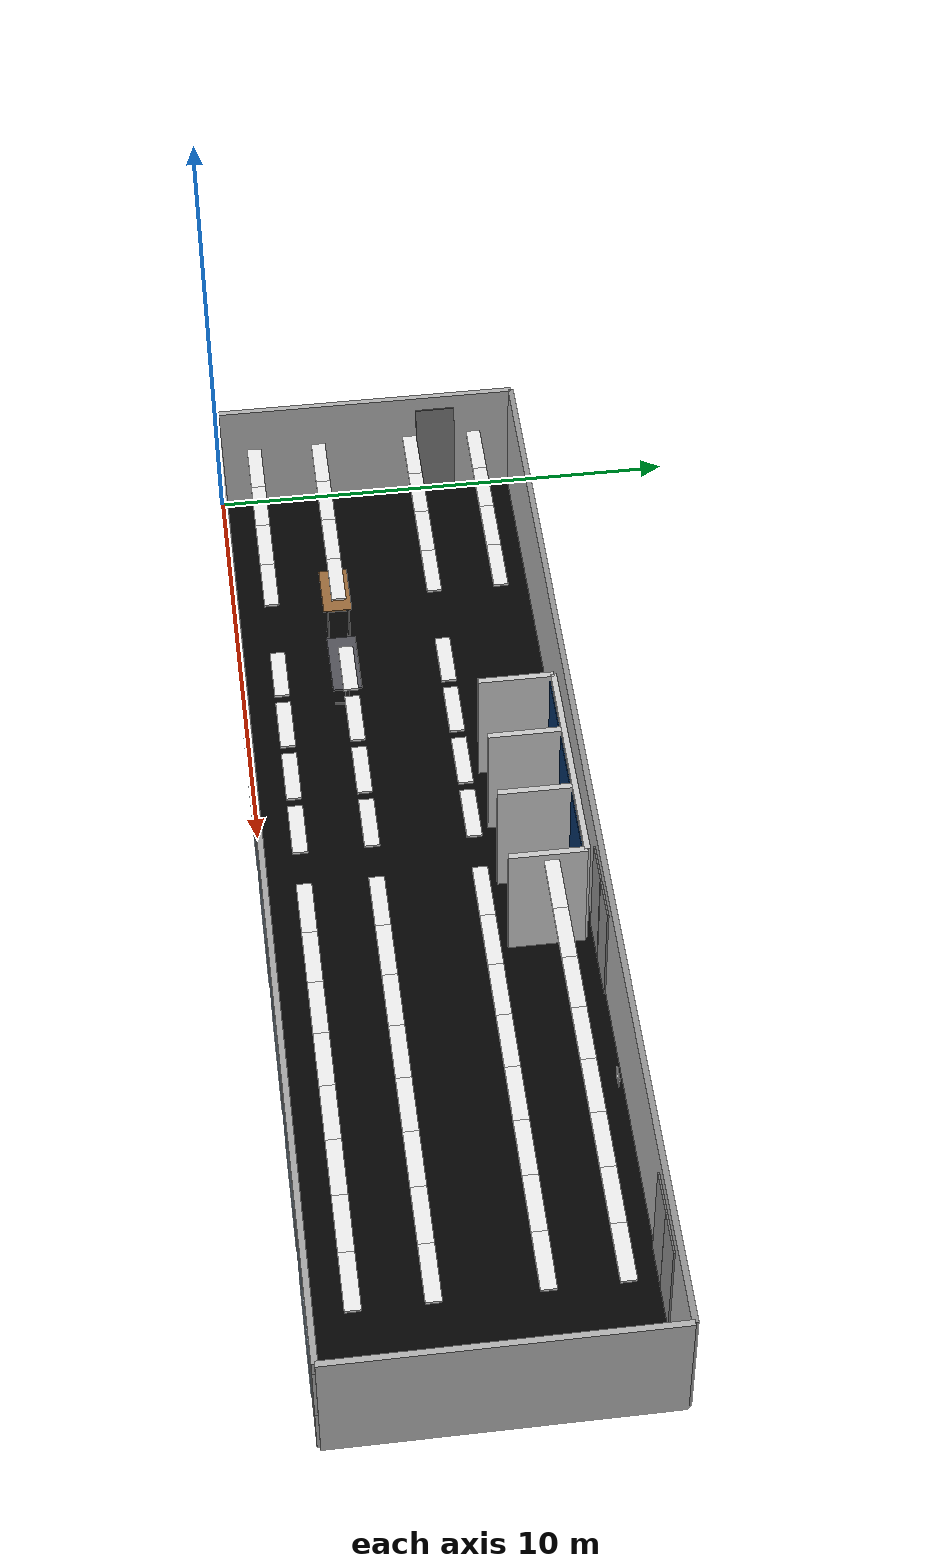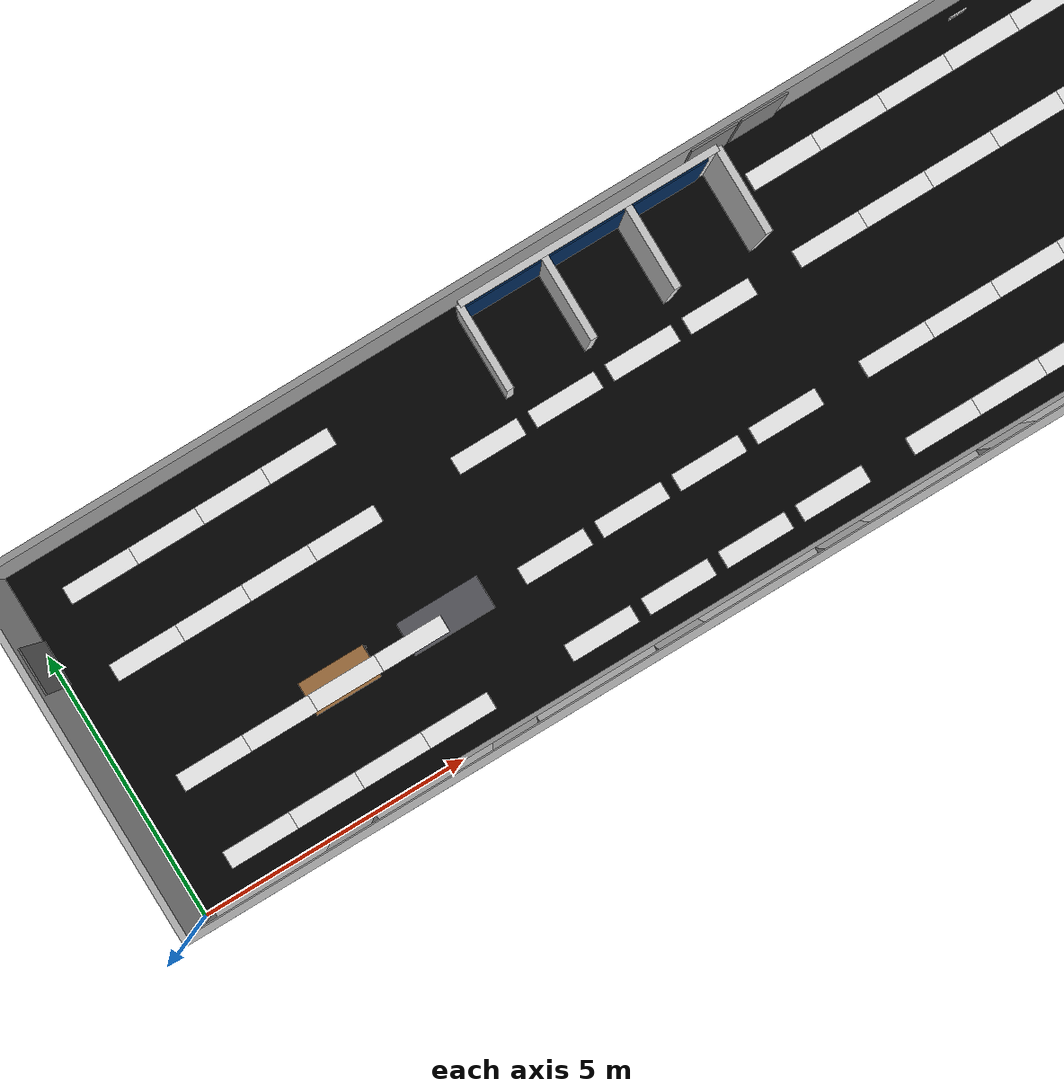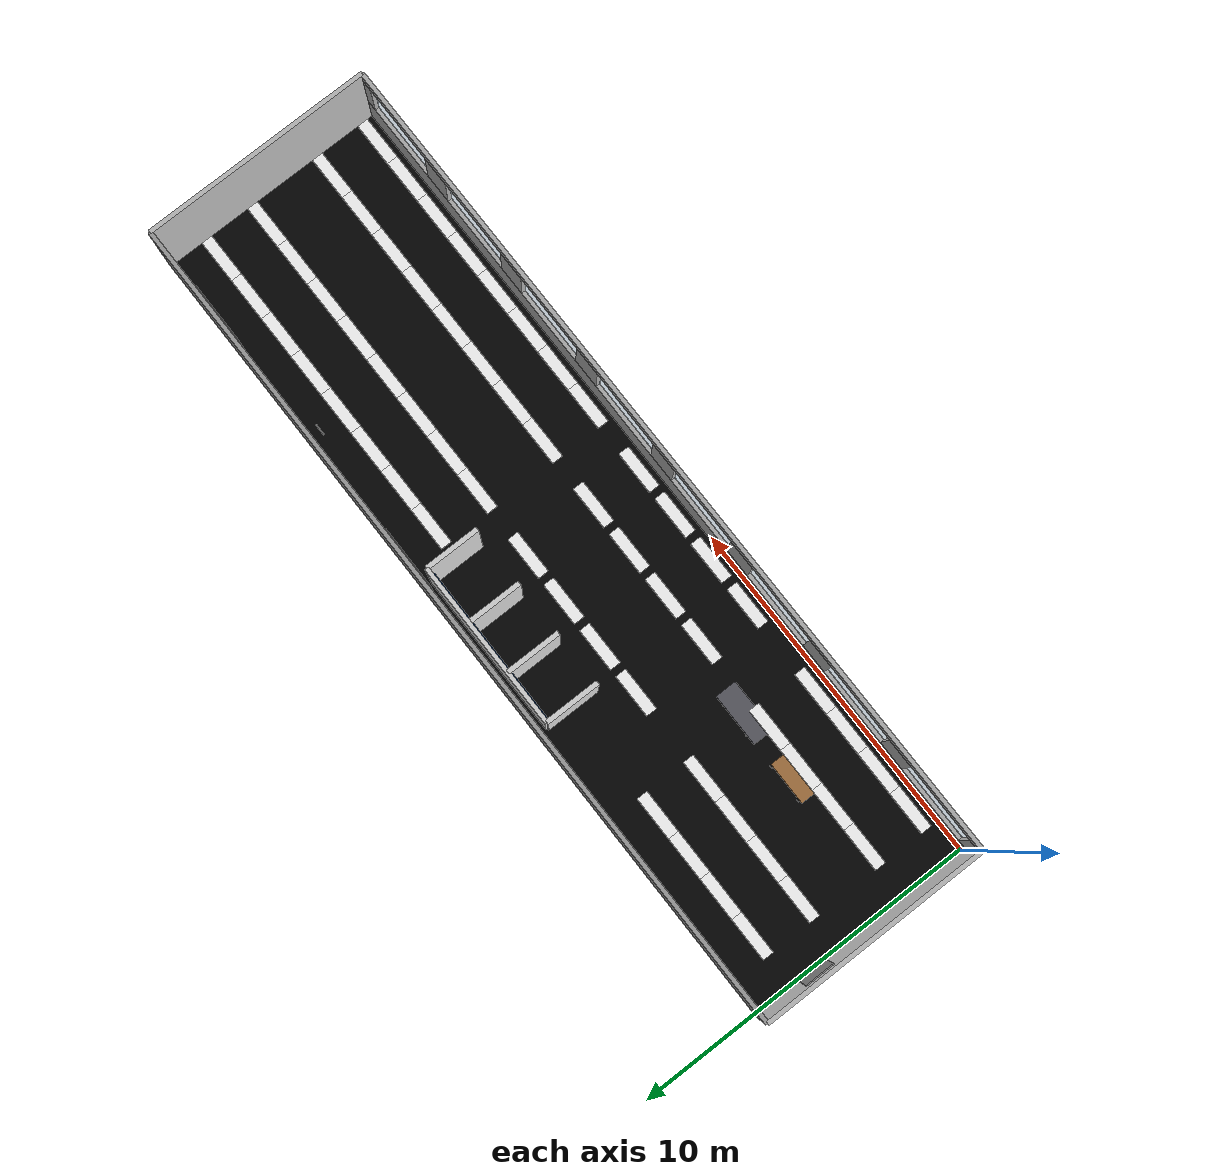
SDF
<?xml version='1.0' encoding='utf-8'?>
<sdf version="1.10">
  <world name="room_427_integrated">
    <plugin filename="gz-sim-physics-system" name="gz::sim::systems::Physics" />
    <plugin filename="gz-sim-user-commands-system" name="gz::sim::systems::UserCommands" />
    <plugin filename="gz-sim-scene-broadcaster-system" name="gz::sim::systems::SceneBroadcaster" />
    <gravity>0 0 -9.8</gravity>
    <scene>
      <ambient>0.45 0.45 0.45 1</ambient>
      <background>0.75 0.78 0.82 1</background>
      <shadows>true</shadows>
      <grid>false</grid>
    </scene>
    <light name="main_light" type="directional">
      <pose>0 0 10 0 0 0</pose>
      <diffuse>0.6 0.6 0.6 1</diffuse>
      <specular>0.4 0.4 0.4 1</specular>
      <direction>-0.5 0.5 -1</direction>
    </light>
    <gui fullscreen="0">
      <camera name="user_camera">
        <pose>12 -10 8 0.7 0 1.15</pose>
      </camera>
    </gui>
    <include>
      <name>room_427_shell</name>
      <uri>model://room_427_shell</uri>
      <pose>0 0 0 0 0 0</pose>
    </include>
    <include>
      <name>light_z1_r1_c1</name>
      <uri>model://fluorescent_light</uri>
      <pose>1.80 0.75 2.70 0 0 0</pose>
    </include>
    <include>
      <name>light_z1_r1_c2</name>
      <uri>model://fluorescent_light</uri>
      <pose>1.80 2.15 2.70 0 0 0</pose>
    </include>
    <include>
      <name>light_z1_r1_c3</name>
      <uri>model://fluorescent_light</uri>
      <pose>1.80 4.15 2.70 0 0 0</pose>
    </include>
    <include>
      <name>light_z1_r1_c4</name>
      <uri>model://fluorescent_light</uri>
      <pose>1.80 5.55 2.70 0 0 0</pose>
    </include>
    <include>
      <name>light_z1_r2_c1</name>
      <uri>model://fluorescent_light</uri>
      <pose>3.00 0.75 2.70 0 0 0</pose>
    </include>
    <include>
      <name>light_z1_r2_c2</name>
      <uri>model://fluorescent_light</uri>
      <pose>3.00 2.15 2.70 0 0 0</pose>
    </include>
    <include>
      <name>light_z1_r2_c3</name>
      <uri>model://fluorescent_light</uri>
      <pose>3.00 4.15 2.70 0 0 0</pose>
    </include>
    <include>
      <name>light_z1_r2_c4</name>
      <uri>model://fluorescent_light</uri>
      <pose>3.00 5.55 2.70 0 0 0</pose>
    </include>
    <include>
      <name>light_z1_r3_c1</name>
      <uri>model://fluorescent_light</uri>
      <pose>4.20 0.75 2.70 0 0 0</pose>
    </include>
    <include>
      <name>light_z1_r3_c2</name>
      <uri>model://fluorescent_light</uri>
      <pose>4.20 2.15 2.70 0 0 0</pose>
    </include>
    <include>
      <name>light_z1_r3_c3</name>
      <uri>model://fluorescent_light</uri>
      <pose>4.20 4.15 2.70 0 0 0</pose>
    </include>
    <include>
      <name>light_z1_r3_c4</name>
      <uri>model://fluorescent_light</uri>
      <pose>4.20 5.55 2.70 0 0 0</pose>
    </include>
    <include>
      <name>light_z1_r4_c1</name>
      <uri>model://fluorescent_light</uri>
      <pose>5.40 0.75 2.70 0 0 0</pose>
    </include>
    <include>
      <name>light_z1_r4_c2</name>
      <uri>model://fluorescent_light</uri>
      <pose>5.40 2.15 2.70 0 0 0</pose>
    </include>
    <include>
      <name>light_z1_r4_c3</name>
      <uri>model://fluorescent_light</uri>
      <pose>5.40 4.15 2.70 0 0 0</pose>
    </include>
    <include>
      <name>light_z1_r4_c4</name>
      <uri>model://fluorescent_light</uri>
      <pose>5.40 5.55 2.70 0 0 0</pose>
    </include>
    <include>
      <name>light_z2_r1_c1</name>
      <uri>model://fluorescent_light</uri>
      <pose>8.00 0.75 2.70 0 0 0</pose>
    </include>
    <include>
      <name>light_z2_r1_c2</name>
      <uri>model://fluorescent_light</uri>
      <pose>8.00 2.15 2.70 0 0 0</pose>
    </include>
    <include>
      <name>light_z2_r1_c3</name>
      <uri>model://fluorescent_light</uri>
      <pose>8.00 4.15 2.70 0 0 0</pose>
    </include>
    <include>
      <name>light_z2_r2_c1</name>
      <uri>model://fluorescent_light</uri>
      <pose>9.40 0.75 2.70 0 0 0</pose>
    </include>
    <include>
      <name>light_z2_r2_c2</name>
      <uri>model://fluorescent_light</uri>
      <pose>9.40 2.15 2.70 0 0 0</pose>
    </include>
    <include>
      <name>light_z2_r2_c3</name>
      <uri>model://fluorescent_light</uri>
      <pose>9.40 4.15 2.70 0 0 0</pose>
    </include>
    <include>
      <name>light_z2_r3_c1</name>
      <uri>model://fluorescent_light</uri>
      <pose>10.80 0.75 2.70 0 0 0</pose>
    </include>
    <include>
      <name>light_z2_r3_c2</name>
      <uri>model://fluorescent_light</uri>
      <pose>10.80 2.15 2.70 0 0 0</pose>
    </include>
    <include>
      <name>light_z2_r3_c3</name>
      <uri>model://fluorescent_light</uri>
      <pose>10.80 4.15 2.70 0 0 0</pose>
    </include>
    <include>
      <name>light_z2_r4_c1</name>
      <uri>model://fluorescent_light</uri>
      <pose>12.20 0.75 2.70 0 0 0</pose>
    </include>
    <include>
      <name>light_z2_r4_c2</name>
      <uri>model://fluorescent_light</uri>
      <pose>12.20 2.15 2.70 0 0 0</pose>
    </include>
    <include>
      <name>light_z2_r4_c3</name>
      <uri>model://fluorescent_light</uri>
      <pose>12.20 4.15 2.70 0 0 0</pose>
    </include>
    <include>
      <name>light_z3_r1_c1</name>
      <uri>model://fluorescent_light</uri>
      <pose>14.20 0.75 2.70 0 0 0</pose>
    </include>
    <include>
      <name>light_z3_r1_c2</name>
      <uri>model://fluorescent_light</uri>
      <pose>14.20 2.15 2.70 0 0 0</pose>
    </include>
    <include>
      <name>light_z3_r1_c3</name>
      <uri>model://fluorescent_light</uri>
      <pose>14.20 4.15 2.70 0 0 0</pose>
    </include>
    <include>
      <name>light_z3_r1_c4</name>
      <uri>model://fluorescent_light</uri>
      <pose>14.20 5.55 2.70 0 0 0</pose>
    </include>
    <include>
      <name>light_z3_r2_c1</name>
      <uri>model://fluorescent_light</uri>
      <pose>15.40 0.75 2.70 0 0 0</pose>
    </include>
    <include>
      <name>light_z3_r2_c2</name>
      <uri>model://fluorescent_light</uri>
      <pose>15.40 2.15 2.70 0 0 0</pose>
    </include>
    <include>
      <name>light_z3_r2_c3</name>
      <uri>model://fluorescent_light</uri>
      <pose>15.40 4.15 2.70 0 0 0</pose>
    </include>
    <include>
      <name>light_z3_r2_c4</name>
      <uri>model://fluorescent_light</uri>
      <pose>15.40 5.55 2.70 0 0 0</pose>
    </include>
    <include>
      <name>light_z3_r3_c1</name>
      <uri>model://fluorescent_light</uri>
      <pose>16.60 0.75 2.70 0 0 0</pose>
    </include>
    <include>
      <name>light_z3_r3_c2</name>
      <uri>model://fluorescent_light</uri>
      <pose>16.60 2.15 2.70 0 0 0</pose>
    </include>
    <include>
      <name>light_z3_r3_c3</name>
      <uri>model://fluorescent_light</uri>
      <pose>16.60 4.15 2.70 0 0 0</pose>
    </include>
    <include>
      <name>light_z3_r3_c4</name>
      <uri>model://fluorescent_light</uri>
      <pose>16.60 5.55 2.70 0 0 0</pose>
    </include>
    <include>
      <name>light_z3_r4_c1</name>
      <uri>model://fluorescent_light</uri>
      <pose>17.80 0.75 2.70 0 0 0</pose>
    </include>
    <include>
      <name>light_z3_r4_c2</name>
      <uri>model://fluorescent_light</uri>
      <pose>17.80 2.15 2.70 0 0 0</pose>
    </include>
    <include>
      <name>light_z3_r4_c3</name>
      <uri>model://fluorescent_light</uri>
      <pose>17.80 4.15 2.70 0 0 0</pose>
    </include>
    <include>
      <name>light_z3_r4_c4</name>
      <uri>model://fluorescent_light</uri>
      <pose>17.80 5.55 2.70 0 0 0</pose>
    </include>
    <include>
      <name>light_z3_r5_c1</name>
      <uri>model://fluorescent_light</uri>
      <pose>19.00 0.75 2.70 0 0 0</pose>
    </include>
    <include>
      <name>light_z3_r5_c2</name>
      <uri>model://fluorescent_light</uri>
      <pose>19.00 2.15 2.70 0 0 0</pose>
    </include>
    <include>
      <name>light_z3_r5_c3</name>
      <uri>model://fluorescent_light</uri>
      <pose>19.00 4.15 2.70 0 0 0</pose>
    </include>
    <include>
      <name>light_z3_r5_c4</name>
      <uri>model://fluorescent_light</uri>
      <pose>19.00 5.55 2.70 0 0 0</pose>
    </include>
    <include>
      <name>light_z3_r6_c1</name>
      <uri>model://fluorescent_light</uri>
      <pose>20.20 0.75 2.70 0 0 0</pose>
    </include>
    <include>
      <name>light_z3_r6_c2</name>
      <uri>model://fluorescent_light</uri>
      <pose>20.20 2.15 2.70 0 0 0</pose>
    </include>
    <include>
      <name>light_z3_r6_c3</name>
      <uri>model://fluorescent_light</uri>
      <pose>20.20 4.15 2.70 0 0 0</pose>
    </include>
    <include>
      <name>light_z3_r6_c4</name>
      <uri>model://fluorescent_light</uri>
      <pose>20.20 5.55 2.70 0 0 0</pose>
    </include>
    <include>
      <name>light_z3_r7_c1</name>
      <uri>model://fluorescent_light</uri>
      <pose>21.40 0.75 2.70 0 0 0</pose>
    </include>
    <include>
      <name>light_z3_r7_c2</name>
      <uri>model://fluorescent_light</uri>
      <pose>21.40 2.15 2.70 0 0 0</pose>
    </include>
    <include>
      <name>light_z3_r7_c3</name>
      <uri>model://fluorescent_light</uri>
      <pose>21.40 4.15 2.70 0 0 0</pose>
    </include>
    <include>
      <name>light_z3_r7_c4</name>
      <uri>model://fluorescent_light</uri>
      <pose>21.40 5.55 2.70 0 0 0</pose>
    </include>
    <include>
      <name>light_z3_r8_c1</name>
      <uri>model://fluorescent_light</uri>
      <pose>22.60 0.75 2.70 0 0 0</pose>
    </include>
    <include>
      <name>light_z3_r8_c2</name>
      <uri>model://fluorescent_light</uri>
      <pose>22.60 2.15 2.70 0 0 0</pose>
    </include>
    <include>
      <name>light_z3_r8_c3</name>
      <uri>model://fluorescent_light</uri>
      <pose>22.60 4.15 2.70 0 0 0</pose>
    </include>
    <include>
      <name>light_z3_r8_c4</name>
      <uri>model://fluorescent_light</uri>
      <pose>22.60 5.55 2.70 0 0 0</pose>
    </include>
    <include>
      <name>door_model_1_left</name>
      <uri>model://door</uri>
      <pose>21.2700 6.4700 0 0 0 0.0000</pose>
    </include>
    <include>
      <name>door_model_1_right</name>
      <uri>model://door</uri>
      <pose>22.1300 6.4700 0 0 0 0.0000</pose>
    </include>
    <include>
      <name>door_model_2_left</name>
      <uri>model://door</uri>
      <pose>13.5425 6.4700 0 0 0 0.0000</pose>
    </include>
    <include>
      <name>door_model_2_right</name>
      <uri>model://door</uri>
      <pose>14.4575 6.4700 0 0 0 0.0000</pose>
    </include>
    <include>
      <name>door_model_3</name>
      <uri>model://door</uri>
      <pose>0.0650 4.8382 0 0 0 1.5708</pose>
    </include>
    <include>
      <name>table_model_1</name>
      <uri>model://my_table</uri>
      <pose>4.0 2.2 0 0 0 0</pose>
    </include>
    <include>
      <name>table_model_2</name>
      <uri>model://my_table2</uri>
      <pose>6.0 2.2 0 0 0 0</pose>
    </include>
    <include>
      <name>aruco_tag_1</name>
      <uri>model://aruco_tag_whiteboard</uri>
      <pose>18.0 6.20 1.5 0 0 3.1416</pose>
    </include>
  </world>
</sdf>

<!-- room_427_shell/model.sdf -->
<sdf version="1.10">
  <model name="room_427_shell">
    <static>true</static>
    <model name="room_427_floor">
      <static>true</static>
      <pose>12.1 3.27 0 0 0 0</pose>
      <link name="floor_link">
        <collision name="floor_collision">
          <geometry>
            <box>
              <size>24.2 6.54 0.03</size>
            </box>
          </geometry>
        </collision>
        <visual name="floor_visual">
          <geometry>
            <box>
              <size>24.2 6.54 0.03</size>
            </box>
          </geometry>
          <material>
            <ambient>0.01 0.01 0.01 1</ambient>
            <diffuse>0.02 0.02 0.02 1</diffuse>
            <specular>0.8 0.8 0.8 1</specular>
            <pbr>
              <metal>
                <metalness>0.0</metalness>
                <roughness>0.18</roughness>
              </metal>
            </pbr>
          </material>
        </visual>
      </link>
    </model>
    <model name="back_wall_D_C">
      <static>true</static>
      <pose>12.1 6.54 1.375 0 0 0</pose>
      <link name="link">
        <collision name="collision">
          <geometry>
            <box>
              <size>24.2 0.12 2.75</size>
            </box>
          </geometry>
        </collision>
        <visual name="visual">
          <geometry>
            <box>
              <size>24.2 0.12 2.75</size>
            </box>
          </geometry>
          <material>
            <ambient>0.62 0.62 0.62 1</ambient>
            <diffuse>0.62 0.62 0.62 1</diffuse>
          </material>
        </visual>
      </link>
    </model>
    <model name="wall_A_C_solid_no_door">
      <static>true</static>
      <pose>24.2 3.27 1.375 0 0 0</pose>
      <link name="link">
        <collision name="collision">
          <geometry>
            <box>
              <size>0.12 6.54 2.75</size>
            </box>
          </geometry>
        </collision>
        <visual name="visual">
          <geometry>
            <box>
              <size>0.12 6.54 2.75</size>
            </box>
          </geometry>
          <material>
            <ambient>0.75 0.75 0.75 1</ambient>
            <diffuse>0.75 0.75 0.75 1</diffuse>
          </material>
        </visual>
      </link>
    </model>
    <model name="B_D_wall_solid_with_door3_panel">
      <static>true</static>
      <pose>0 3.27 1.375 0 0 0</pose>
      <link name="wall_B_D_solid">
        <collision name="collision">
          <geometry>
            <box>
              <size>0.12 6.54 2.75</size>
            </box>
          </geometry>
        </collision>
        <visual name="visual">
          <geometry>
            <box>
              <size>0.12 6.54 2.75</size>
            </box>
          </geometry>
          <material>
            <ambient>0.75 0.75 0.75 1</ambient>
            <diffuse>0.75 0.75 0.75 1</diffuse>
          </material>
        </visual>
      </link>
    </model>
    <model name="window_wall_lower_A_B">
      <static>true</static>
      <pose>12.1 0 0.545 0 0 0</pose>
      <link name="link">
        <collision name="collision">
          <geometry>
            <box>
              <size>24.2 0.12 1.09</size>
            </box>
          </geometry>
        </collision>
        <visual name="visual">
          <geometry>
            <box>
              <size>24.2 0.12 1.09</size>
            </box>
          </geometry>
          <material>
            <ambient>0.7 0.7 0.7 1</ambient>
            <diffuse>0.7 0.7 0.7 1</diffuse>
          </material>
        </visual>
      </link>
    </model>
    <model name="window_wall_top_A_B">
      <static>true</static>
      <pose>12.1 0 2.5925 0 0 0</pose>
      <link name="link">
        <collision name="collision">
          <geometry>
            <box>
              <size>24.2 0.12 0.305</size>
            </box>
          </geometry>
        </collision>
        <visual name="visual">
          <geometry>
            <box>
              <size>24.2 0.12 0.305</size>
            </box>
          </geometry>
          <material>
            <ambient>0.7 0.7 0.7 1</ambient>
            <diffuse>0.7 0.7 0.7 1</diffuse>
          </material>
        </visual>
      </link>
    </model>
    <model name="window_wall_vertical_pieces">
      <static>true</static>
      <link name="window_side_left">
        <pose>0.1725 0 1.765 0 0 0</pose>
        <collision name="collision">
          <geometry>
            <box>
              <size>0.345 0.12 1.35</size>
            </box>
          </geometry>
        </collision>
        <visual name="visual">
          <geometry>
            <box>
              <size>0.345 0.12 1.35</size>
            </box>
          </geometry>
          <material>
            <ambient>0.7 0.7 0.7 1</ambient>
            <diffuse>0.7 0.7 0.7 1</diffuse>
          </material>
        </visual>
      </link>
      <link name="window_gap_1">
        <pose>2.97 0 1.765 0 0 0</pose>
        <collision name="collision">
          <geometry>
            <box>
              <size>0.83 0.12 1.35</size>
            </box>
          </geometry>
        </collision>
        <visual name="visual">
          <geometry>
            <box>
              <size>0.83 0.12 1.35</size>
            </box>
          </geometry>
          <material>
            <ambient>0.7 0.7 0.7 1</ambient>
            <diffuse>0.7 0.7 0.7 1</diffuse>
          </material>
        </visual>
      </link>
      <link name="window_gap_2">
        <pose>6.01 0 1.765 0 0 0</pose>
        <collision name="collision">
          <geometry>
            <box>
              <size>0.83 0.12 1.35</size>
            </box>
          </geometry>
        </collision>
        <visual name="visual">
          <geometry>
            <box>
              <size>0.83 0.12 1.35</size>
            </box>
          </geometry>
          <material>
            <ambient>0.7 0.7 0.7 1</ambient>
            <diffuse>0.7 0.7 0.7 1</diffuse>
          </material>
        </visual>
      </link>
      <link name="window_gap_3">
        <pose>9.05 0 1.765 0 0 0</pose>
        <collision name="collision">
          <geometry>
            <box>
              <size>0.83 0.12 1.35</size>
            </box>
          </geometry>
        </collision>
        <visual name="visual">
          <geometry>
            <box>
              <size>0.83 0.12 1.35</size>
            </box>
          </geometry>
          <material>
            <ambient>0.7 0.7 0.7 1</ambient>
            <diffuse>0.7 0.7 0.7 1</diffuse>
          </material>
        </visual>
      </link>
      <link name="window_gap_4">
        <pose>12.09 0 1.765 0 0 0</pose>
        <collision name="collision">
          <geometry>
            <box>
              <size>0.83 0.12 1.35</size>
            </box>
          </geometry>
        </collision>
        <visual name="visual">
          <geometry>
            <box>
              <size>0.83 0.12 1.35</size>
            </box>
          </geometry>
          <material>
            <ambient>0.7 0.7 0.7 1</ambient>
            <diffuse>0.7 0.7 0.7 1</diffuse>
          </material>
        </visual>
      </link>
      <link name="window_gap_5">
        <pose>15.13 0 1.765 0 0 0</pose>
        <collision name="collision">
          <geometry>
            <box>
              <size>0.83 0.12 1.35</size>
            </box>
          </geometry>
        </collision>
        <visual name="visual">
          <geometry>
            <box>
              <size>0.83 0.12 1.35</size>
            </box>
          </geometry>
          <material>
            <ambient>0.7 0.7 0.7 1</ambient>
            <diffuse>0.7 0.7 0.7 1</diffuse>
          </material>
        </visual>
      </link>
      <link name="window_gap_6">
        <pose>18.17 0 1.765 0 0 0</pose>
        <collision name="collision">
          <geometry>
            <box>
              <size>0.83 0.12 1.35</size>
            </box>
          </geometry>
        </collision>
        <visual name="visual">
          <geometry>
            <box>
              <size>0.83 0.12 1.35</size>
            </box>
          </geometry>
          <material>
            <ambient>0.7 0.7 0.7 1</ambient>
            <diffuse>0.7 0.7 0.7 1</diffuse>
          </material>
        </visual>
      </link>
      <link name="window_gap_7">
        <pose>21.21 0 1.765 0 0 0</pose>
        <collision name="collision">
          <geometry>
            <box>
              <size>0.83 0.12 1.35</size>
            </box>
          </geometry>
        </collision>
        <visual name="visual">
          <geometry>
            <box>
              <size>0.83 0.12 1.35</size>
            </box>
          </geometry>
          <material>
            <ambient>0.7 0.7 0.7 1</ambient>
            <diffuse>0.7 0.7 0.7 1</diffuse>
          </material>
        </visual>
      </link>
      <link name="window_side_right">
        <pose>24.0175 0 1.765 0 0 0</pose>
        <collision name="collision">
          <geometry>
            <box>
              <size>0.365 0.12 1.35</size>
            </box>
          </geometry>
        </collision>
        <visual name="visual">
          <geometry>
            <box>
              <size>0.365 0.12 1.35</size>
            </box>
          </geometry>
          <material>
            <ambient>0.7 0.7 0.7 1</ambient>
            <diffuse>0.7 0.7 0.7 1</diffuse>
          </material>
        </visual>
      </link>
    </model>
    <model name="window_glass_panes">
      <static>true</static>
      <link name="window_1">
        <pose>1.45 -0.07 1.765 0 0 0</pose>
        <visual name="visual">
          <geometry>
            <box>
              <size>2.21 0.03 1.35</size>
            </box>
          </geometry>
          <material>
            <ambient>0.55 0.75 0.9 0.35</ambient>
            <diffuse>0.55 0.75 0.9 0.35</diffuse>
            <specular>0.8 0.8 0.8 1</specular>
          </material>
          <transparency>0.55</transparency>
        </visual>
      </link>
      <link name="window_2">
        <pose>4.49 -0.07 1.765 0 0 0</pose>
        <visual name="visual">
          <geometry>
            <box>
              <size>2.21 0.03 1.35</size>
            </box>
          </geometry>
          <material>
            <ambient>0.55 0.75 0.9 0.35</ambient>
            <diffuse>0.55 0.75 0.9 0.35</diffuse>
            <specular>0.8 0.8 0.8 1</specular>
          </material>
          <transparency>0.55</transparency>
        </visual>
      </link>
      <link name="window_3">
        <pose>7.53 -0.07 1.765 0 0 0</pose>
        <visual name="visual">
          <geometry>
            <box>
              <size>2.21 0.03 1.35</size>
            </box>
          </geometry>
          <material>
            <ambient>0.55 0.75 0.9 0.35</ambient>
            <diffuse>0.55 0.75 0.9 0.35</diffuse>
            <specular>0.8 0.8 0.8 1</specular>
          </material>
          <transparency>0.55</transparency>
        </visual>
      </link>
      <link name="window_4">
        <pose>10.57 -0.07 1.765 0 0 0</pose>
        <visual name="visual">
          <geometry>
            <box>
              <size>2.21 0.03 1.35</size>
            </box>
          </geometry>
          <material>
            <ambient>0.55 0.75 0.9 0.35</ambient>
            <diffuse>0.55 0.75 0.9 0.35</diffuse>
            <specular>0.8 0.8 0.8 1</specular>
          </material>
          <transparency>0.55</transparency>
        </visual>
      </link>
      <link name="window_5">
        <pose>13.61 -0.07 1.765 0 0 0</pose>
        <visual name="visual">
          <geometry>
            <box>
              <size>2.21 0.03 1.35</size>
            </box>
          </geometry>
          <material>
            <ambient>0.55 0.75 0.9 0.35</ambient>
            <diffuse>0.55 0.75 0.9 0.35</diffuse>
            <specular>0.8 0.8 0.8 1</specular>
          </material>
          <transparency>0.55</transparency>
        </visual>
      </link>
      <link name="window_6">
        <pose>16.65 -0.07 1.765 0 0 0</pose>
        <visual name="visual">
          <geometry>
            <box>
              <size>2.21 0.03 1.35</size>
            </box>
          </geometry>
          <material>
            <ambient>0.55 0.75 0.9 0.35</ambient>
            <diffuse>0.55 0.75 0.9 0.35</diffuse>
            <specular>0.8 0.8 0.8 1</specular>
          </material>
          <transparency>0.55</transparency>
        </visual>
      </link>
      <link name="window_7">
        <pose>19.69 -0.07 1.765 0 0 0</pose>
        <visual name="visual">
          <geometry>
            <box>
              <size>2.21 0.03 1.35</size>
            </box>
          </geometry>
          <material>
            <ambient>0.55 0.75 0.9 0.35</ambient>
            <diffuse>0.55 0.75 0.9 0.35</diffuse>
            <specular>0.8 0.8 0.8 1</specular>
          </material>
          <transparency>0.55</transparency>
        </visual>
      </link>
      <link name="window_8">
        <pose>22.73 -0.07 1.765 0 0 0</pose>
        <visual name="visual">
          <geometry>
            <box>
              <size>2.21 0.03 1.35</size>
            </box>
          </geometry>
          <material>
            <ambient>0.55 0.75 0.9 0.35</ambient>
            <diffuse>0.55 0.75 0.9 0.35</diffuse>
            <specular>0.8 0.8 0.8 1</specular>
          </material>
          <transparency>0.55</transparency>
        </visual>
      </link>
    </model>
    <model name="doors_and_connected_boxes_on_D_C_wall">
      <static>true</static>
      <link name="boxes_back_wall">
        <pose>11.1 6.27 1.375 0 0 0</pose>
        <collision name="collision">
          <geometry>
            <box>
              <size>4.699 0.12 2.75</size>
            </box>
          </geometry>
        </collision>
        <visual name="visual">
          <geometry>
            <box>
              <size>4.699 0.12 2.75</size>
            </box>
          </geometry>
          <material>
            <ambient>0.85 0.85 0.85 1</ambient>
            <diffuse>0.85 0.85 0.85 1</diffuse>
          </material>
        </visual>
      </link>
      <link name="boxes_left_side">
        <pose>8.75 5.50 1.375 0 0 0</pose>
        <collision name="collision">
          <geometry>
            <box>
              <size>0.127 1.549 2.75</size>
            </box>
          </geometry>
        </collision>
        <visual name="visual">
          <geometry>
            <box>
              <size>0.127 1.549 2.75</size>
            </box>
          </geometry>
          <material>
            <ambient>0.85 0.85 0.85 1</ambient>
            <diffuse>0.85 0.85 0.85 1</diffuse>
          </material>
        </visual>
      </link>
      <link name="boxes_divider_1">
        <pose>10.27 5.50 1.375 0 0 0</pose>
        <collision name="collision">
          <geometry>
            <box>
              <size>0.127 1.549 2.75</size>
            </box>
          </geometry>
        </collision>
        <visual name="visual">
          <geometry>
            <box>
              <size>0.127 1.549 2.75</size>
            </box>
          </geometry>
          <material>
            <ambient>0.85 0.85 0.85 1</ambient>
            <diffuse>0.85 0.85 0.85 1</diffuse>
          </material>
        </visual>
      </link>
      <link name="boxes_divider_2">
        <pose>11.79 5.50 1.375 0 0 0</pose>
        <collision name="collision">
          <geometry>
            <box>
              <size>0.127 1.549 2.75</size>
            </box>
          </geometry>
        </collision>
        <visual name="visual">
          <geometry>
            <box>
              <size>0.127 1.549 2.75</size>
            </box>
          </geometry>
          <material>
            <ambient>0.85 0.85 0.85 1</ambient>
            <diffuse>0.85 0.85 0.85 1</diffuse>
          </material>
        </visual>
      </link>
      <link name="boxes_right_side">
        <pose>13.45 5.50 1.375 0 0 0</pose>
        <collision name="collision">
          <geometry>
            <box>
              <size>0.127 1.549 2.75</size>
            </box>
          </geometry>
        </collision>
        <visual name="visual">
          <geometry>
            <box>
              <size>0.127 1.549 2.75</size>
            </box>
          </geometry>
          <material>
            <ambient>0.85 0.85 0.85 1</ambient>
            <diffuse>0.85 0.85 0.85 1</diffuse>
          </material>
        </visual>
      </link>
      <link name="box_1_blue_panel">
        <pose>9.51 6.20 1.35 0 0 0</pose>
        <visual name="visual">
          <geometry>
            <box>
              <size>1.397 0.03 2.50</size>
            </box>
          </geometry>
          <material>
            <ambient>0.0 0.16 0.35 1</ambient>
            <diffuse>0.0 0.16 0.35 1</diffuse>
          </material>
        </visual>
      </link>
      <link name="box_2_blue_panel">
        <pose>11.03 6.20 1.35 0 0 0</pose>
        <visual name="visual">
          <geometry>
            <box>
              <size>1.397 0.03 2.50</size>
            </box>
          </geometry>
          <material>
            <ambient>0.0 0.16 0.35 1</ambient>
            <diffuse>0.0 0.16 0.35 1</diffuse>
          </material>
        </visual>
      </link>
      <link name="box_3_blue_panel">
        <pose>12.55 6.20 1.35 0 0 0</pose>
        <visual name="visual">
          <geometry>
            <box>
              <size>1.397 0.03 2.50</size>
            </box>
          </geometry>
          <material>
            <ambient>0.0 0.16 0.35 1</ambient>
            <diffuse>0.0 0.16 0.35 1</diffuse>
          </material>
        </visual>
      </link>
    </model>
  </model>
</sdf>

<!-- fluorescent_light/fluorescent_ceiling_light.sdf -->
<sdf version="1.10">
  <model name="fluorescent_ceiling_light">
    <!-- This is a static fixture -->
    <static>true</static>

    <!-- Light housing / panel geometry -->
    <link name="panel_link">
      <pose>0 0 0 0 0 0</pose>

      <!-- Collision (simple box) -->
      <collision name="panel_collision">
        <geometry>
          <box>
            <!-- size: length x width x thickness -->
            <size>1.2 0.3 0.05</size>
          </box>
        </geometry>
      </collision>

      <!-- Visual (white, slightly emissive to look "lit") -->
      <visual name="panel_visual">
        <geometry>
          <box>
            <size>1.2 0.3 0.05</size>
          </box>
        </geometry>
        <material>
          <!-- Soft grey ambient -->
          <ambient>0.2 0.2 0.2 1</ambient>
          <!-- White diffuse -->
          <diffuse>1 1 1 1</diffuse>
                    <!-- Slightly emissive so it glows (RGBA, 0-1 range) -->
          <emissive>0.8 0.8 0.7 1</emissive>
          <!-- Mild specular highlight -->
          <specular>0.2 0.2 0.2 1</specular>
        </material>
        <!-- Slightly offset to show the lit face on the bottom -->
        <pose>0 0 -0.025 0 0 0</pose>
      </visual>
          <!-- Light source itself (spot light pointing downwards) -->
      <light name="panel_light" type="spot">
        <!-- Position the light just below the panel, pointing down (negative Z) -->
        <pose>0 0 -0.03 0 0 0</pose>

        <!-- Basic color/intensity -->
        <!-- diffuse = color of the light, specular = highlight color -->
        <diffuse>1.0 0.98 0.9 1</diffuse>   <!-- warm-ish white -->
        <specular>0.5 0.5 0.5 1</specular>

        <!-- Attenuation controls brightness falloff -->
        <attenuation>
          <range>10</range>       <!-- meters -->
          <constant>0.8</constant>
          <linear>0.2</linear>
          <quadratic>0.02</quadratic>
        </attenuation>

        <!-- Spot light properties -->
        <direction>0 0 -1</direction>      <!-- downwards -->
        <spot>
          <!-- angles in radians; inner < outer -->
          <inner_angle>0.9</inner_angle>   <!-- ~52 degrees -->
          <outer_angle>1.2</outer_angle>   <!-- ~69 degrees -->
          <falloff>0.5</falloff>
        </spot>

        <cast_shadows>true</cast_shadows>
      </light>
    </link>
  </model>
</sdf>

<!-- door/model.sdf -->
<sdf version="1.6">
  <model name="door">

    <static>true</static>

    <link name="door_link">

      <!-- Place the door so its bottom face rests on the ground (z = half height) -->
      <pose>0 0 1.2065 0 0 0</pose>

      <inertial>
        <mass>25.0</mass>
        <inertia>
          <!-- Inertia tensor for a solid box: -->
          <!-- Ixx = (1/12) * m * (h^2 + d^2) -->
          <!-- Iyy = (1/12) * m * (w^2 + d^2) -->
          <!-- Izz = (1/12) * m * (w^2 + h^2) -->
          <ixx>1.1687</ixx>
          <ixy>0</ixy>
          <ixz>0</ixz>
          <iyy>0.1458</iyy>
          <iyz>0</iyz>
          <izz>1.0236</izz>
        </inertia>
      </inertial>

      <!-- Collision shape -->
      <collision name="door_collision">
        <geometry>
          <box>
            <!-- Dimensions in meters:
                 Height : 7ft 11in   = 2.4130 m
                 Length : 2ft 9.75in = 0.8509 m
                 Width  : 2in        = 0.0508 m -->
            <size>0.8509 0.0508 2.4130</size>
          </box>
        </geometry>
        <surface>
          <friction>
            <ode>
              <mu>0.6</mu>
              <mu2>0.6</mu2>
            </ode>
          </friction>
          <contact>
            <ode>
              <kp>1e6</kp>
              <kd>1.0</kd>
            </ode>
          </contact>
        </surface>
      </collision>

      <!-- Visual shape -->
      <visual name="door_visual">
        <geometry>
          <box>
            <size>0.8509 0.0508 2.4130</size>
          </box>
        </geometry>
        <material>
          <ambient>0.5 0.5 0.5 1.0</ambient>
          <diffuse>0.5 0.5 0.5 1.0</diffuse>
          <specular>0.2 0.2 0.2 1.0</specular>
          <emissive>0 0 0 1.0</emissive>
        </material>
      </visual>

    </link>

  </model>
</sdf>

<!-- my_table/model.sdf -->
<sdf version="1.9">
  <model name="my_table">
    <static>true</static>

    <!-- TABLETOP                  -->
    <link name="tabletop">
      <!-- top surface at total height = 0.9525 -->
      <!-- tabletop center z = 0.9525 - 0.0381/2 = 0.93345 -->
      <pose>0 0 0.93345 0 0 0</pose>

      <collision name="tabletop_collision">
        <geometry>
          <box>
            <size>1.2192 0.60325 0.0381</size>
          </box>
        </geometry>
      </collision>

      <visual name="tabletop_visual">
        <geometry>
          <box>
            <size>1.2192 0.60325 0.0381</size>
          </box>
        </geometry>
        <material>
          <ambient>0.65 0.45 0.25 1</ambient>
          <diffuse>0.65 0.45 0.25 1</diffuse>
        </material>
      </visual>

      <inertial>
        <mass>18.0</mass>
        <inertia>
          <ixx>1.0</ixx>
          <iyy>1.0</iyy>
          <izz>1.0</izz>
          <ixy>0.0</ixy>
          <ixz>0.0</ixz>
          <iyz>0.0</iyz>
        </inertia>
      </inertial>
    </link>

    <!-- LEGS                      -->
    <!-- leg center z = wheel diameter + leg length/2 -->

    <link name="leg_fl">
      <pose>0.5334 0.226425 0.5080 0 0 0</pose>
      <collision name="collision">
        <geometry>
          <box>
            <size>0.0508 0.0508 0.8128</size>
          </box>
        </geometry>
      </collision>
      <visual name="visual">
        <geometry>
          <box>
            <size>0.0508 0.0508 0.8128</size>
          </box>
        </geometry>
        <material>
          <ambient>0.35 0.35 0.35 1</ambient>
          <diffuse>0.35 0.35 0.35 1</diffuse>
        </material>
      </visual>
      <inertial>
        <mass>2.5</mass>
        <inertia>
          <ixx>0.02</ixx>
          <iyy>0.02</iyy>
          <izz>0.02</izz>
          <ixy>0.0</ixy>
          <ixz>0.0</ixz>
          <iyz>0.0</iyz>
        </inertia>
      </inertial>
    </link>

    <link name="leg_fr">
      <pose>0.5334 -0.226425 0.5080 0 0 0</pose>
      <collision name="collision">
        <geometry>
          <box>
            <size>0.0508 0.0508 0.8128</size>
          </box>
        </geometry>
      </collision>
      <visual name="visual">
        <geometry>
          <box>
            <size>0.0508 0.0508 0.8128</size>
          </box>
        </geometry>
        <material>
          <ambient>0.35 0.35 0.35 1</ambient>
          <diffuse>0.35 0.35 0.35 1</diffuse>
        </material>
      </visual>
      <inertial>
        <mass>2.5</mass>
        <inertia>
          <ixx>0.02</ixx>
          <iyy>0.02</iyy>
          <izz>0.02</izz>
          <ixy>0.0</ixy>
          <ixz>0.0</ixz>
          <iyz>0.0</iyz>
        </inertia>
      </inertial>
    </link>

    <link name="leg_rl">
      <pose>-0.5334 0.226425 0.5080 0 0 0</pose>
      <collision name="collision">
        <geometry>
          <box>
            <size>0.0508 0.0508 0.8128</size>
          </box>
        </geometry>
      </collision>
      <visual name="visual">
        <geometry>
          <box>
            <size>0.0508 0.0508 0.8128</size>
          </box>
        </geometry>
        <material>
          <ambient>0.35 0.35 0.35 1</ambient>
          <diffuse>0.35 0.35 0.35 1</diffuse>
        </material>
      </visual>
      <inertial>
        <mass>2.5</mass>
        <inertia>
          <ixx>0.02</ixx>
          <iyy>0.02</iyy>
          <izz>0.02</izz>
          <ixy>0.0</ixy>
          <ixz>0.0</ixz>
          <iyz>0.0</iyz>
        </inertia>
      </inertial>
    </link>

    <link name="leg_rr">
      <pose>-0.5334 -0.226425 0.5080 0 0 0</pose>
      <collision name="collision">
        <geometry>
          <box>
            <size>0.0508 0.0508 0.8128</size>
          </box>
        </geometry>
      </collision>
      <visual name="visual">
        <geometry>
          <box>
            <size>0.0508 0.0508 0.8128</size>
          </box>
        </geometry>
        <material>
          <ambient>0.35 0.35 0.35 1</ambient>
          <diffuse>0.35 0.35 0.35 1</diffuse>
        </material>
      </visual>
      <inertial>
        <mass>2.5</mass>
        <inertia>
          <ixx>0.02</ixx>
          <iyy>0.02</iyy>
          <izz>0.02</izz>
          <ixy>0.0</ixy>
          <ixz>0.0</ixz>
          <iyz>0.0</iyz>
        </inertia>
      </inertial>
    </link>

    <!-- WHEELS                    -->
    <!-- wheel center z = radius = 0.0508 -->
    <!-- rotated so cylinder axis is horizontal -->

    <link name="wheel_fl">
      <pose>0.5334 0.226425 0.0508 1.5708 0 0</pose>
      <collision name="collision">
        <geometry>
          <cylinder>
            <radius>0.0508</radius>
            <length>0.0508</length>
          </cylinder>
        </geometry>
      </collision>
      <visual name="visual">
        <geometry>
          <cylinder>
            <radius>0.0508</radius>
            <length>0.0508</length>
          </cylinder>
        </geometry>
        <material>
          <ambient>0.08 0.08 0.08 1</ambient>
          <diffuse>0.08 0.08 0.08 1</diffuse>
        </material>
      </visual>
      <inertial>
        <mass>0.5</mass>
        <inertia>
          <ixx>0.001</ixx>
          <iyy>0.001</iyy>
          <izz>0.001</izz>
          <ixy>0.0</ixy>
          <ixz>0.0</ixz>
          <iyz>0.0</iyz>
        </inertia>
      </inertial>
    </link>

    <link name="wheel_fr">
      <pose>0.5334 -0.226425 0.0508 1.5708 0 0</pose>
      <collision name="collision">
        <geometry>
          <cylinder>
            <radius>0.0508</radius>
            <length>0.0508</length>
          </cylinder>
        </geometry>
      </collision>
      <visual name="visual">
        <geometry>
          <cylinder>
            <radius>0.0508</radius>
            <length>0.0508</length>
          </cylinder>
        </geometry>
        <material>
          <ambient>0.08 0.08 0.08 1</ambient>
          <diffuse>0.08 0.08 0.08 1</diffuse>
        </material>
      </visual>
      <inertial>
        <mass>0.5</mass>
        <inertia>
          <ixx>0.001</ixx>
          <iyy>0.001</iyy>
          <izz>0.001</izz>
          <ixy>0.0</ixy>
          <ixz>0.0</ixz>
          <iyz>0.0</iyz>
        </inertia>
      </inertial>
    </link>

    <link name="wheel_rl">
      <pose>-0.5334 0.226425 0.0508 1.5708 0 0</pose>
      <collision name="collision">
        <geometry>
          <cylinder>
            <radius>0.0508</radius>
            <length>0.0508</length>
          </cylinder>
        </geometry>
      </collision>
      <visual name="visual">
        <geometry>
          <cylinder>
            <radius>0.0508</radius>
            <length>0.0508</length>
          </cylinder>
        </geometry>
        <material>
          <ambient>0.08 0.08 0.08 1</ambient>
          <diffuse>0.08 0.08 0.08 1</diffuse>
        </material>
      </visual>
      <inertial>
        <mass>0.5</mass>
        <inertia>
          <ixx>0.001</ixx>
          <iyy>0.001</iyy>
          <izz>0.001</izz>
          <ixy>0.0</ixy>
          <ixz>0.0</ixz>
          <iyz>0.0</iyz>
        </inertia>
      </inertial>
    </link>

    <link name="wheel_rr">
      <pose>-0.5334 -0.226425 0.0508 1.5708 0 0</pose>
      <collision name="collision">
        <geometry>
          <cylinder>
            <radius>0.0508</radius>
            <length>0.0508</length>
          </cylinder>
        </geometry>
      </collision>
      <visual name="visual">
        <geometry>
          <cylinder>
            <radius>0.0508</radius>
            <length>0.0508</length>
          </cylinder>
        </geometry>
        <material>
          <ambient>0.08 0.08 0.08 1</ambient>
          <diffuse>0.08 0.08 0.08 1</diffuse>
        </material>
      </visual>
      <inertial>
        <mass>0.5</mass>
        <inertia>
          <ixx>0.001</ixx>
          <iyy>0.001</iyy>
          <izz>0.001</izz>
          <ixy>0.0</ixy>
          <ixz>0.0</ixz>
          <iyz>0.0</iyz>
        </inertia>
      </inertial>
    </link>

    <!-- FIXED JOINTS              -->

    <joint name="joint_table_leg_fl" type="fixed">
      <parent>tabletop</parent>
      <child>leg_fl</child>
    </joint>

    <joint name="joint_table_leg_fr" type="fixed">
      <parent>tabletop</parent>
      <child>leg_fr</child>
    </joint>

    <joint name="joint_table_leg_rl" type="fixed">
      <parent>tabletop</parent>
      <child>leg_rl</child>
    </joint>

    <joint name="joint_table_leg_rr" type="fixed">
      <parent>tabletop</parent>
      <child>leg_rr</child>
    </joint>

    <joint name="joint_leg_fl_wheel" type="fixed">
      <parent>leg_fl</parent>
      <child>wheel_fl</child>
    </joint>

    <joint name="joint_leg_fr_wheel" type="fixed">
      <parent>leg_fr</parent>
      <child>wheel_fr</child>
    </joint>

    <joint name="joint_leg_rl_wheel" type="fixed">
      <parent>leg_rl</parent>
      <child>wheel_rl</child>
    </joint>

    <joint name="joint_leg_rr_wheel" type="fixed">
      <parent>leg_rr</parent>
      <child>wheel_rr</child>
    </joint>

  </model>
</sdf>

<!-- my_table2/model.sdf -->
<sdf version="1.9">
  <model name="Table_2">
    <static>true</static>

    <!-- Dimensions used
         length = 1.52 m
         width  = 0.61 m
         height = 0.76 m
    -->

    <!-- TABLETOP                  -->
    <link name="tabletop">
      <!-- tabletop thickness assumed = 0.03 m -->
      <pose>0 0 0.745 0 0 0</pose>

      <collision name="tabletop_collision">
        <geometry>
          <box>
            <size>1.52 0.61 0.03</size>
          </box>
        </geometry>
      </collision>

      <visual name="tabletop_visual">
        <geometry>
          <box>
            <size>1.52 0.61 0.03</size>
          </box>
        </geometry>
        <material>
          <ambient>0.35 0.35 0.38 1</ambient>
          <diffuse>0.35 0.35 0.38 1</diffuse>
        </material>
      </visual>

      <inertial>
        <mass>18.0</mass>
        <inertia>
          <ixx>1.0</ixx>
          <iyy>1.0</iyy>
          <izz>1.0</izz>
          <ixy>0.0</ixy>
          <ixz>0.0</ixz>
          <iyz>0.0</iyz>
        </inertia>
      </inertial>
    </link>

    <!-- LEFT LEG COLUMN           -->
    <link name="left_leg">
      <pose>-0.48 0 0.3525 0 0 0</pose>

      <collision name="left_leg_collision">
        <geometry>
          <box>
            <size>0.08 0.08 0.645</size>
          </box>
        </geometry>
      </collision>

      <visual name="left_leg_visual">
        <geometry>
          <box>
            <size>0.08 0.08 0.645</size>
          </box>
        </geometry>
        <material>
          <ambient>0.15 0.15 0.15 1</ambient>
          <diffuse>0.15 0.15 0.15 1</diffuse>
        </material>
      </visual>

      <inertial>
        <mass>6.0</mass>
        <inertia>
          <ixx>0.05</ixx>
          <iyy>0.05</iyy>
          <izz>0.05</izz>
          <ixy>0.0</ixy>
          <ixz>0.0</ixz>
          <iyz>0.0</iyz>
        </inertia>
      </inertial>
    </link>

    <!-- RIGHT LEG COLUMN          -->
    <link name="right_leg">
      <pose>0.48 0 0.3525 0 0 0</pose>

      <collision name="right_leg_collision">
        <geometry>
          <box>
            <size>0.08 0.08 0.645</size>
          </box>
        </geometry>
      </collision>

      <visual name="right_leg_visual">
        <geometry>
          <box>
            <size>0.08 0.08 0.645</size>
          </box>
        </geometry>
        <material>
          <ambient>0.15 0.15 0.15 1</ambient>
          <diffuse>0.15 0.15 0.15 1</diffuse>
        </material>
      </visual>

      <inertial>
        <mass>6.0</mass>
        <inertia>
          <ixx>0.05</ixx>
          <iyy>0.05</iyy>
          <izz>0.05</izz>
          <ixy>0.0</ixy>
          <ixz>0.0</ixz>
          <iyz>0.0</iyz>
        </inertia>
      </inertial>
    </link>

    <!-- LEFT FOOT                 -->
    <!-- parallel to table width   -->
    <link name="left_foot">
      <pose>-0.48 0 0.03 0 0 0</pose>

      <collision name="left_foot_collision">
        <geometry>
          <box>
            <size>0.03 0.52 0.03</size>
          </box>
        </geometry>
      </collision>

      <visual name="left_foot_visual">
        <geometry>
          <box>
            <size>0.03 0.52 0.03</size>
          </box>
        </geometry>
        <material>
          <ambient>0.08 0.08 0.08 1</ambient>
          <diffuse>0.08 0.08 0.08 1</diffuse>
        </material>
      </visual>

      <inertial>
        <mass>4.0</mass>
        <inertia>
          <ixx>0.02</ixx>
          <iyy>0.02</iyy>
          <izz>0.02</izz>
          <ixy>0.0</ixy>
          <ixz>0.0</ixz>
          <iyz>0.0</iyz>
        </inertia>
      </inertial>
    </link>

    <!-- RIGHT FOOT                -->
    <!-- parallel to table width   -->
    <link name="right_foot">
      <pose>0.48 0 0.03 0 0 0</pose>

      <collision name="right_foot_collision">
        <geometry>
          <box>
            <size>0.03 0.52 0.03</size>
          </box>
        </geometry>
      </collision>

      <visual name="right_foot_visual">
        <geometry>
          <box>
            <size>0.03 0.52 0.03</size>
          </box>
        </geometry>
        <material>
          <ambient>0.08 0.08 0.08 1</ambient>
          <diffuse>0.08 0.08 0.08 1</diffuse>
        </material>
      </visual>

      <inertial>
        <mass>4.0</mass>
        <inertia>
          <ixx>0.02</ixx>
          <iyy>0.02</iyy>
          <izz>0.02</izz>
          <ixy>0.0</ixy>
          <ixz>0.0</ixz>
          <iyz>0.0</iyz>
        </inertia>
      </inertial>
    </link>

    <!-- Optional small control box under tabletop -->
    <link name="control_box">
      <pose>0.15 -0.24 0.70 0 0 0</pose>

      <collision name="control_box_collision">
        <geometry>
          <box>
            <size>0.12 0.04 0.02</size>
          </box>
        </geometry>
      </collision>

      <visual name="control_box_visual">
        <geometry>
          <box>
            <size>0.12 0.04 0.02</size>
          </box>
        </geometry>
        <material>
          <ambient>0.05 0.05 0.05 1</ambient>
          <diffuse>0.05 0.05 0.05 1</diffuse>
        </material>
      </visual>

      <inertial>
        <mass>0.2</mass>
        <inertia>
          <ixx>0.0001</ixx>
          <iyy>0.0001</iyy>
          <izz>0.0001</izz>
          <ixy>0.0</ixy>
          <ixz>0.0</ixz>
          <iyz>0.0</iyz>
        </inertia>
      </inertial>
    </link>

    <!-- FIXED JOINTS              -->
    <joint name="tabletop_to_left_leg" type="fixed">
      <parent>tabletop</parent>
      <child>left_leg</child>
    </joint>

    <joint name="tabletop_to_right_leg" type="fixed">
      <parent>tabletop</parent>
      <child>right_leg</child>
    </joint>

    <joint name="left_leg_to_left_foot" type="fixed">
      <parent>left_leg</parent>
      <child>left_foot</child>
    </joint>

    <joint name="right_leg_to_right_foot" type="fixed">
      <parent>right_leg</parent>
      <child>right_foot</child>
    </joint>

    <joint name="tabletop_to_control_box" type="fixed">
      <parent>tabletop</parent>
      <child>control_box</child>
    </joint>

  </model>
</sdf>

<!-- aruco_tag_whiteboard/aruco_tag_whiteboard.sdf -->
<sdf version="1.10">
  <model name="aruco_tag_whiteboard">
    <static>true</static>

    <link name="board_link">
      <pose>0 0 0 0 0 0</pose>

      <collision name="board_collision">
        <geometry>
          <box>
            <size>0.30 0.02 0.25</size>
          </box>
        </geometry>
      </collision>

      <visual name="board_visual">
        <geometry>
          <box>
            <size>0.30 0.02 0.25</size>
          </box>
        </geometry>
        <material>
          <ambient>1 1 1 1</ambient>
          <diffuse>1 1 1 1</diffuse>
          <specular>0.2 0.2 0.2 1</specular>
        </material>
      </visual>

      <visual name="tag_visual_front">
        <pose>0 0.0105 0 -1.5708 0 0</pose>
        <geometry>
          <plane>
            <normal>0 0 1</normal>
            <size>0.20 0.20</size>
          </plane>
        </geometry>
        <material>
          <ambient>1 1 1 1</ambient>
          <diffuse>1 1 1 1</diffuse>
          <specular>0.1 0.1 0.1 1</specular>
          <pbr>
            <metal>
              <albedo_map>materials/textures/apriltag_36h11_id1.png</albedo_map>
              <roughness>0.9</roughness>
              <metalness>0.0</metalness>
            </metal>
          </pbr>
        </material>
      </visual>

    </link>
  </model>
</sdf>
